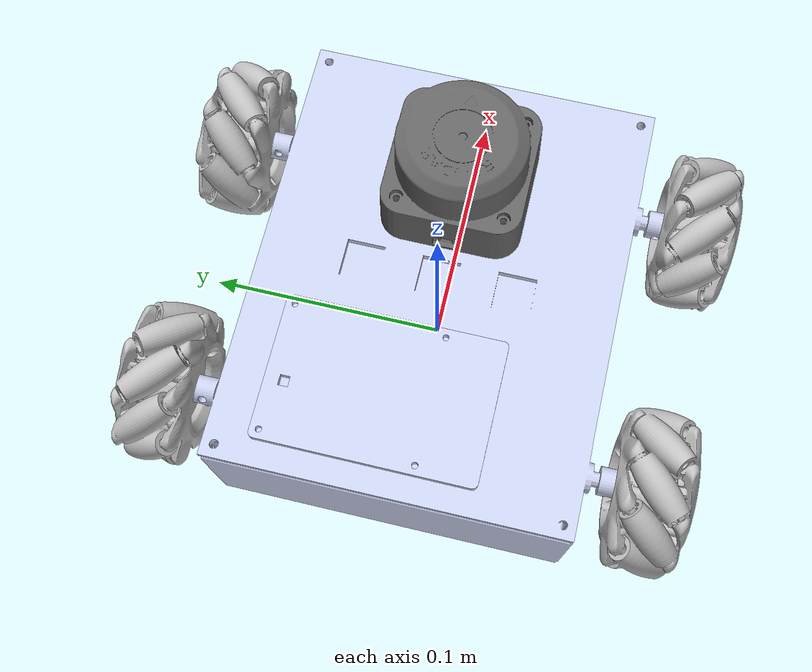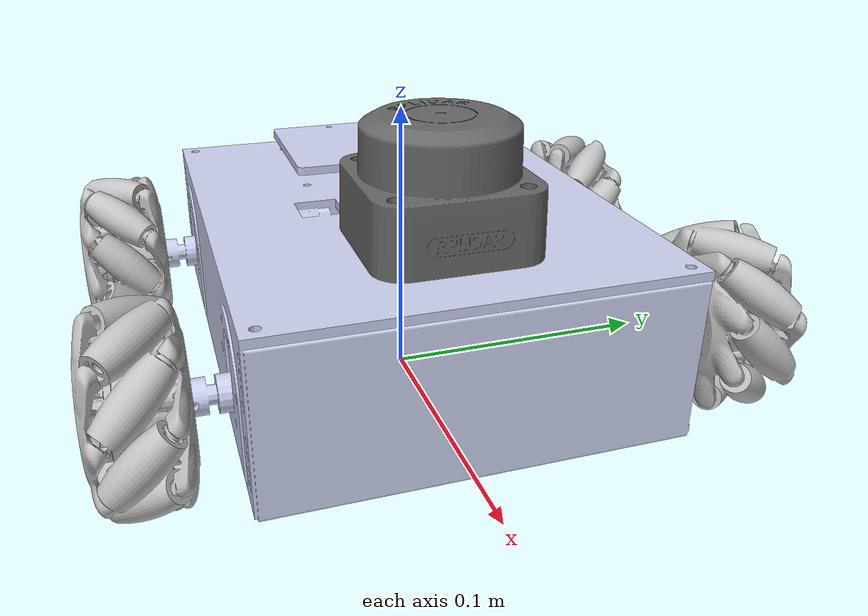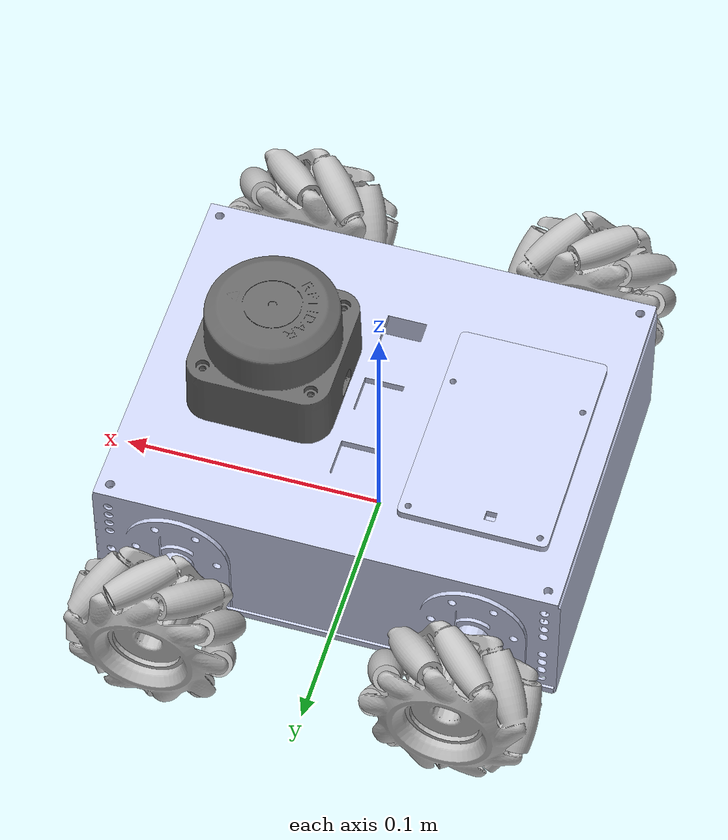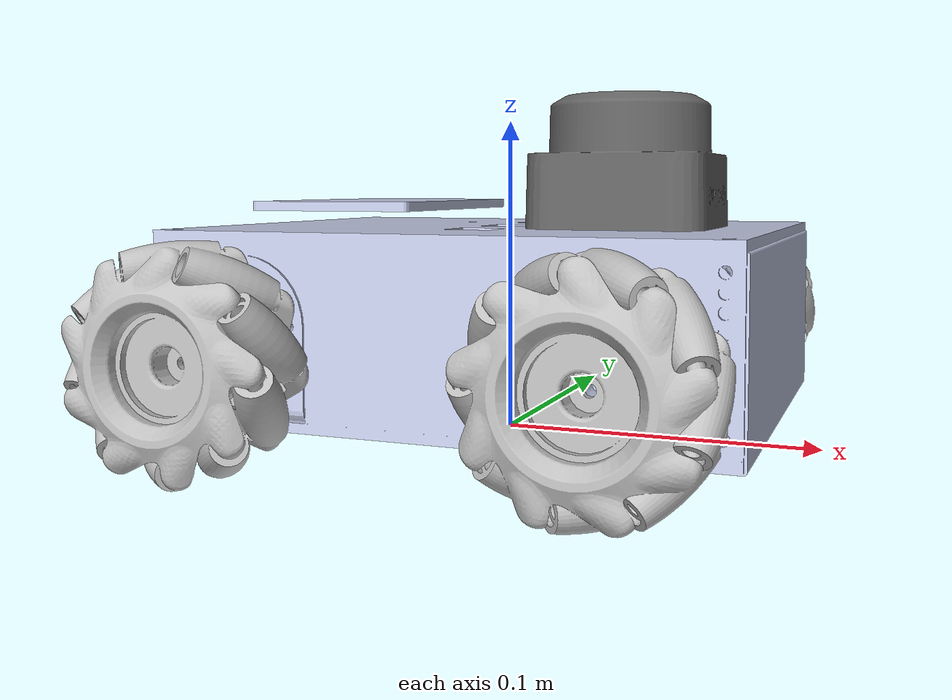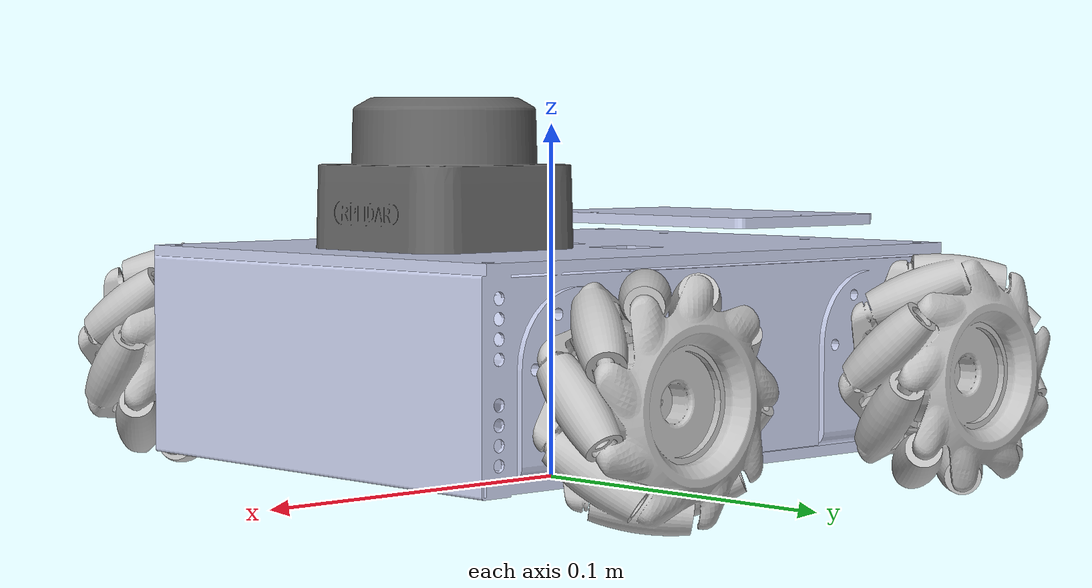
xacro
<?xml version="1.0" ?>
<robot name="mywaybot_gazebo" xmlns:xacro="http://ros.org/wiki/xacro">

    <!-- xacro macro-->
    <xacro:include filename="$(find mywaybot_gazebo)/urdf/lidar.xacro" />
    <xacro:include filename="$(find mywaybot_gazebo)/urdf/omni_drive.urdf.xacro" />
    <!-- wheel property -->
    <xacro:property name="wheel_radius" value="0.0325" />
    <xacro:property name="wheel_width" value="0.0304" />
    <xacro:property name="wheel_mass" value="0.065" />
    <xacro:property name="wheel_torque" value="20" />

    <link name="base_footprint" />
    <link name="base_link">
    <inertial>
        <origin xyz="-3.90859031350477E-06 1.43747857999353E-05 0.0283269426003643" rpy="0 0 0" />
        <mass value="0.381949527093752" />
        <inertia ixx="0.00032319847460271" ixy="0" ixz="0" iyy="0.000428449552348986" iyz="1.87719666280075E-09" izz="0.000699559457801583" />
    </inertial>
    <visual>
        <origin xyz="0 0 0" rpy="0 0 0" />
        <geometry>
            <mesh filename="file://$(find mywaybot_gazebo)/models/stl/base_link.stl"  />
        </geometry>
        <material name="">
            <color rgba="0.792156862745098 0.819607843137255 0.933333333333333 1" />
        </material>
    </visual>
    <collision>
        <origin xyz="0 0 0" rpy="0 0 0" />
        <geometry>
            <mesh filename="file://$(find mywaybot_gazebo)/models/stl/base_link.stl"  />
        </geometry>
    </collision>
    </link>
    <link name="wheel1">
    <inertial>
        <origin xyz="0 0 0" rpy="0 0 0"/>
        <mass value="${wheel_mass}" />
        <inertia ixx="${(2/5) * wheel_mass * (wheel_radius * wheel_radius)}" ixy="0" ixz="0"
                 iyy="${(2/5) * wheel_mass * (wheel_radius * wheel_radius)}" iyz="0"
                 izz="${(2/5) * wheel_mass * (wheel_radius * wheel_radius)}" />
    </inertial>
    <visual>
        <origin xyz="0 0 0" rpy="0 0 0" />
        <geometry>
            <mesh filename="file://$(find mywaybot_gazebo)/models/stl/wheel1.stl"  />
        </geometry>
        <material name="">
            <color rgba="0.752941176470588 0.752941176470588 0.752941176470588 1" />
        </material>
    </visual>
    <collision>
        <origin xyz="0 0 0" rpy="0 0 0" />
        <geometry>
            <cylinder radius="${wheel_radius}" length="${wheel_width}"/>
        </geometry>
    </collision>
    </link>

    <link name="wheel2">
    <inertial>
        <origin xyz="0 0 0" rpy="0 0 0"/>
        <mass value="${wheel_mass}" />
        <inertia ixx="${(2/5) * wheel_mass * (wheel_radius * wheel_radius)}" ixy="0" ixz="0"
                 iyy="${(2/5) * wheel_mass * (wheel_radius * wheel_radius)}" iyz="0"
                 izz="${(2/5) * wheel_mass * (wheel_radius * wheel_radius)}" />
    </inertial>
    <visual>
        <origin xyz="0 0 0" rpy="0 0 0" />
        <geometry>
            <mesh filename="file://$(find mywaybot_gazebo)/models/stl/wheel2.stl"  />
        </geometry>
        <material name="">
            <color rgba="0.752941176470588 0.752941176470588 0.752941176470588 1" />
        </material>
    </visual>
    <collision>
        <origin xyz="0 0 0" rpy="0 0 0" />
        <geometry>
            <cylinder radius="${wheel_radius}" length="${wheel_width}"/>
        </geometry>
    </collision>
    </link>

    <link name="wheel3">
    <inertial>
        <origin xyz="0 0 0" rpy="0 0 0"/>
        <mass value="${wheel_mass}" />
        <inertia ixx="${(2/5) * wheel_mass * (wheel_radius * wheel_radius)}" ixy="0" ixz="0"
                 iyy="${(2/5) * wheel_mass * (wheel_radius * wheel_radius)}" iyz="0"
                 izz="${(2/5) * wheel_mass * (wheel_radius * wheel_radius)}" />
    </inertial>
    <visual>
        <origin xyz="0 0 0" rpy="0 0 0" />
        <geometry>
            <mesh filename="file://$(find mywaybot_gazebo)/models/stl/wheel3.stl"  />
        </geometry>
        <material name="">
            <color rgba="0.752941176470588 0.752941176470588 0.752941176470588 1" />
        </material>
    </visual>
    <collision>
        <origin xyz="0 0 0" rpy="0 0 0" />
        <geometry>
            <cylinder radius="${wheel_radius}" length="${wheel_width}"/>
        </geometry>
    </collision>
    </link>

    <link name="wheel4">
    <inertial>
        <origin xyz="0 0 0" rpy="0 0 0"/>
        <mass value="${wheel_mass}" />
        <inertia ixx="${(2/5) * wheel_mass * (wheel_radius * wheel_radius)}" ixy="0" ixz="0"
                 iyy="${(2/5) * wheel_mass * (wheel_radius * wheel_radius)}" iyz="0"
                 izz="${(2/5) * wheel_mass * (wheel_radius * wheel_radius)}" />
    </inertial>
    <visual>
        <origin xyz="0 0 0" rpy="0 0 0" />
        <geometry>
            <mesh filename="file://$(find mywaybot_gazebo)/models/stl/wheel4.stl"  />
        </geometry>
        <material name="">
            <color rgba="0.752941176470588 0.752941176470588 0.752941176470588 1" />
        </material>
    </visual>
    <collision>
        <origin xyz="0 0 0" rpy="0 0 0" />
        <geometry>
            <cylinder radius="${wheel_radius}" length="${wheel_width}"/>
        </geometry>
    </collision>
    </link>

    <link name="lidar_link">
    <inertial>
        <origin xyz="8.52131440630677E-05 -9.55220519319054E-05 0.0140146397972782" rpy="0 0 0" />
        <mass value="0.0319595829444156" />
        <inertia ixx="1.08378674966698E-05" ixy="0" ixz="1.61414334372884E-08" iyy="1.07813623896383E-05" iyz="-4.20751610607626E-09" izz="1.96313888344206E-05" />
    </inertial>
    <visual>
        <origin xyz="0 0 -0.0298" rpy="0 0 0" />
        <geometry>
          <mesh filename="file://$(find mywaybot_gazebo)/models/stl/scan.stl"  />
        </geometry>
        <material name="">
            <color rgba="0.4 0.4 0.4 1" />
        </material>
    </visual>
    <collision>
        <origin xyz="0 0 -0.0298" rpy="0 0 0" />
        <geometry>
          <mesh filename="file://$(find mywaybot_gazebo)/models/stl/scan.stl"  />
        </geometry>
    </collision>
    </link>

    <link name="imu">
    <inertial>
        <origin xyz="-0.000154135778752049 0.00149999999999999 1.62622425316158E-05" rpy="0 0 0" />
        <mass value="0.0141651382931337" />
        <inertia ixx="3.69803461369615E-06" ixy="-2.08164299927343E-21" ixz="-8.07956969382042E-09" iyy="1.21554251693806E-05" iyz="-4.61454702115272E-22" izz="8.47863826312414E-06" />
    </inertial>
    <visual>
        <origin xyz="0 0 0" rpy="1.57 0 1.57" />
        <geometry>
            <mesh filename="file://$(find mywaybot_gazebo)/models/stl/imu.stl"  />
        </geometry>
        <material name="">
            <color rgba="0.792156862745098 0.819607843137255 0.933333333333333 1" />
        </material>
    </visual>
    <collision>
        <origin xyz="0 0 0" rpy="1.57 0 1.57" />
        <geometry>
            <mesh filename="file://$(find mywaybot_gazebo)/models/stl/imu.stl"  />
        </geometry>
    </collision>
    </link>

    <!-- JOINT-->
    <joint name="base_joint" type="fixed">
        <parent link="base_footprint" />
        <child link="base_link" />
        <origin xyz="0 0 0.009" rpy="0 0 3.14" />
    </joint>

    <joint name="wheel1_joint" type="continuous">
        <origin xyz="-0.056 0.09755 0.0235" rpy="1.5708 0.94526 3.1416" />
        <parent link="base_link" />
        <child link="wheel1" />
        <axis xyz="-0.0011986 0.00086576 1" />
    </joint>
    <joint name="wheel2_joint" type="continuous">
        <origin xyz="-0.056 -0.09755 0.0235" rpy="1.5708 0.56949 0" />
        <parent link="base_link" />
        <child link="wheel2" />
        <axis xyz="0 0 1" />
    </joint>
    <joint name="wheel3_joint" type="continuous">
        <origin xyz="0.056 0.09755 0.0235" rpy="-1.5708 1.1491 0" />
        <parent link="base_link" />
        <child link="wheel3" />
        <axis xyz="-0.0013491 -0.00060515 1" />
    </joint>
    <joint name="wheel4_joint" type="continuous">
        <origin xyz="0.056 -0.09755 0.0235" rpy="1.5708 1.5249 0" />
        <parent link="base_link" />
        <child link="wheel4" />
        <axis xyz="0 0 1" />
    </joint>
    <joint name="scan_joint" type="fixed">
        <origin xyz="-0.04 0 0.086763" rpy="0 0 3.14" />
        <parent link="base_link" />
        <child link="lidar_link" />
        <axis xyz="0 0 0" />
    </joint>
    <joint name="imu_joint" type="fixed">
        <origin xyz="0.0499999999999996 -0.00999999999999986 0.0622634" rpy="0 0 3.14" />
        <parent link="base_link" />
        <child link="imu" />
        <axis xyz="0 0 0" />
    </joint>

    <!-- mu1 mu2-->
    <gazebo reference="wheel1">
        <mu1>0.01</mu1>
        <mu2>0.01</mu2>
    </gazebo>
    <gazebo reference="wheel2">
        <mu1>0.01</mu1>
        <mu2>0.01</mu2>
    </gazebo>
    <gazebo reference="wheel3">
        <mu1>0.01</mu1>
        <mu2>0.01</mu2>
    </gazebo>
    <gazebo reference="wheel4">
        <mu1>0.01</mu1>
        <mu2>0.01</mu2>
    </gazebo>

</robot>
